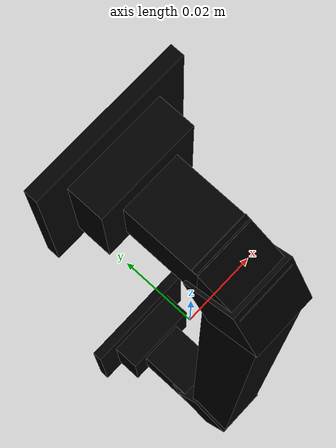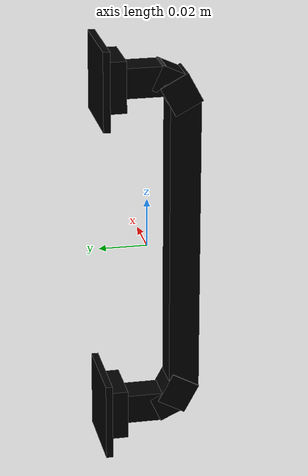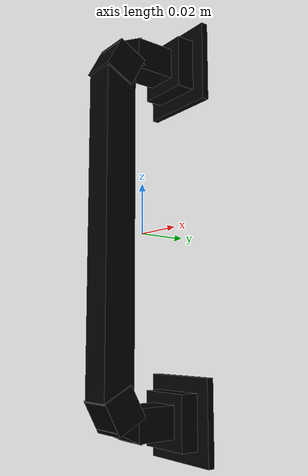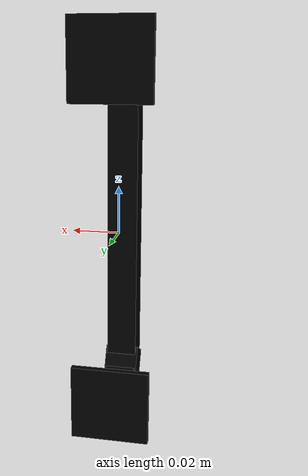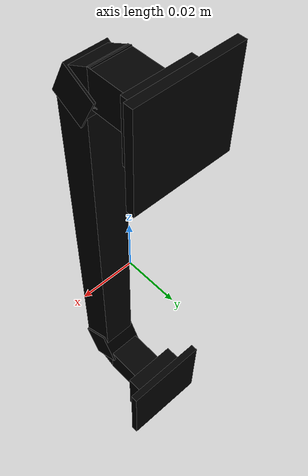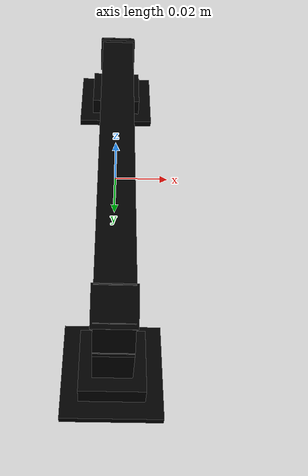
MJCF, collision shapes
<?xml version="1.0" ?>
<mujoco model="model">
    <compiler angle="radian"/>
    <asset>
        <mesh file="visuals/CabinetHandle011.obj" name="mesh"/>
        <texture file="visuals/T_BC001.png" name="tex" type="2d"/>
        <material name="mat" rgba="1 1 1 1.0" texture="tex" shininess="2" specular="0.7"/>
    </asset>
    <default>
        <default class="visual">
            <geom conaffinity="0" contype="0" group="1" type="mesh"/>
        </default>
        <default class="collision">
            <geom group="0" rgba="0 0 0 0"/>
        </default>
        <default class="spawn">
            <geom group="0" rgba="0 0 0 0" contype="0" conaffinity="0"/>
            <site group="0" rgba="0 0 0 0"/>
        </default>
    </default>
    <worldbody>
        <body>
            <body name="object">
                <geom mesh="mesh" type="mesh" solimp="0.998 0.998 0.001" solref="0.001 1" density="100" friction="0.95 0.3 0.1" class="visual" material="mat"/>
                <geom class="collision" type="box" pos="-4.666042877943255e-05 -0.01440433133393526 0.00023044488625600934" size="0.006478141061961651 0.00633669551461935 0.06341902911663055" quat="1.0 0.0 0.0 0.0"/>
                <geom class="collision" type="box" pos="-4.666042877943255e-05 0.0017906102584674954 0.0714331567287445" size="0.006478141061961651 0.008241108618676662 0.00617692107334733" quat="1.0 0.0 0.0 0.0"/>
                <geom class="collision" type="box" pos="-4.666042877943255e-05 -0.008287137374281883 0.07056736201047897" size="0.006478141061961651 0.005949551705271006 0.005478900391608477" quat="0.9766363501548767 0.21489863097667694 -4.7717081614146326e-17 9.146933901117864e-25"/>
                <geom class="collision" type="box" pos="-4.666042877943255e-05 -0.012650697492063046 0.06564969569444656" size="0.00721912132576108 0.006630071438848972 0.006319430191069841" quat="0.8579085469245911 0.5138024091720581 -1.1408705295413892e-16 8.571137029433674e-24"/>
                <geom class="collision" type="box" pos="-5.071394480182789e-05 0.019367218017578125 0.07148302346467972" size="0.016653569415211678 0.001403836184181273 0.01626337133347988" quat="1.0 0.0 0.0 0.0" name="handle_connector"/>
                <geom class="collision" type="box" pos="-5.071394480182789e-05 0.014109875075519085 0.07127523422241211" size="0.01080483291298151 0.003799360478296876 0.010551674291491508" quat="1.0 0.0 0.0 0.0"/>
                <geom class="collision" type="box" pos="-5.071394480182789e-05 0.019367218017578125 -0.071097232401371" size="0.016653569415211678 0.001403836184181273 0.01626337133347988" quat="1.0 0.0 0.0 0.0"/>
                <geom class="collision" type="box" pos="-5.071394480182789e-05 0.014109875075519085 -0.07130502164363861" size="0.01080483291298151 0.003799360478296876 0.010551674291491508" quat="1.0 0.0 0.0 0.0"/>
                <geom class="collision" type="box" pos="-4.697759504779242e-05 0.002341280225664377 -0.0712515190243721" size="0.006478141061961651 0.008241107687354088 0.00617692107334733" quat="2.146698534488678e-05 2.0512301489361562e-05 -0.9999966621398926 -0.002581515582278371"/>
                <geom class="collision" type="box" pos="-4.668371911975555e-05 -0.007740807253867388 -0.07043776661157608" size="0.006478141061961651 0.005949551705271006 0.005478900391608477" quat="1.6557372873649e-05 2.4646284146001562e-05 -0.9771878719329834 0.2123766839504242"/>
                <geom class="collision" type="box" pos="-4.634326251107268e-05 -0.012129697948694229 -0.06554269045591354" size="0.00721912132576108 0.006630071438848972 0.006319430191069841" quat="7.877446478232741e-06 2.8627464416786097e-05 -0.8592321872711182 0.5115858316421509"/>
            </body>
        </body>
    </worldbody>
    <actuator/>
</mujoco>
